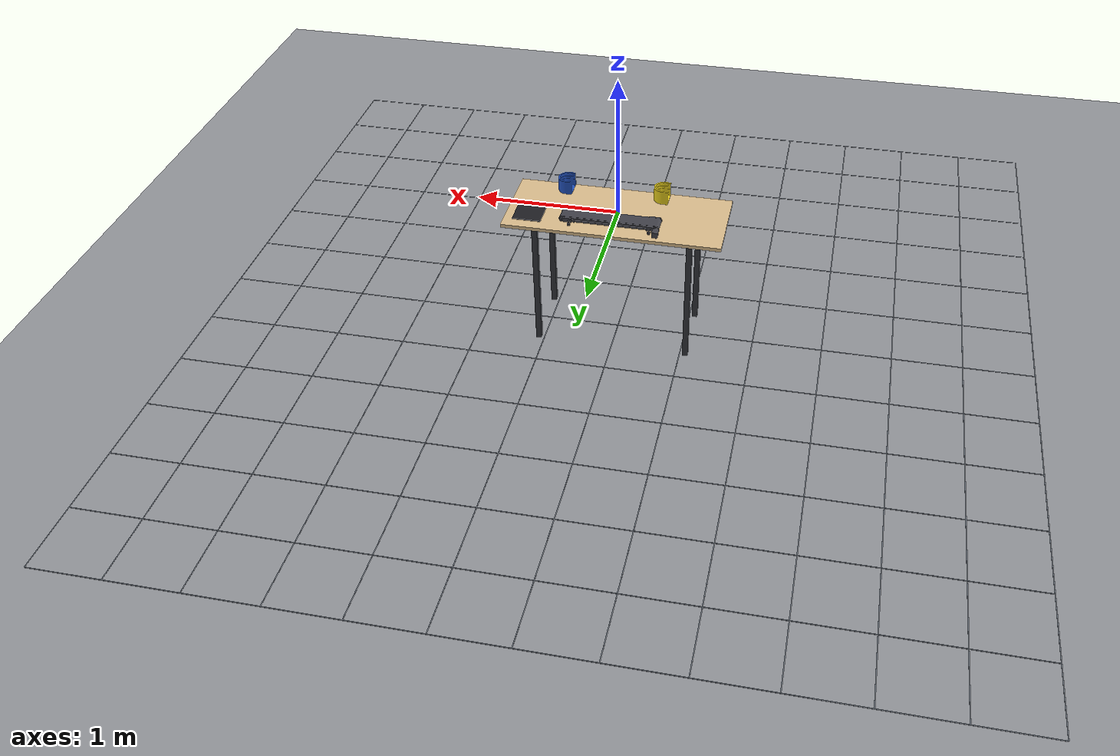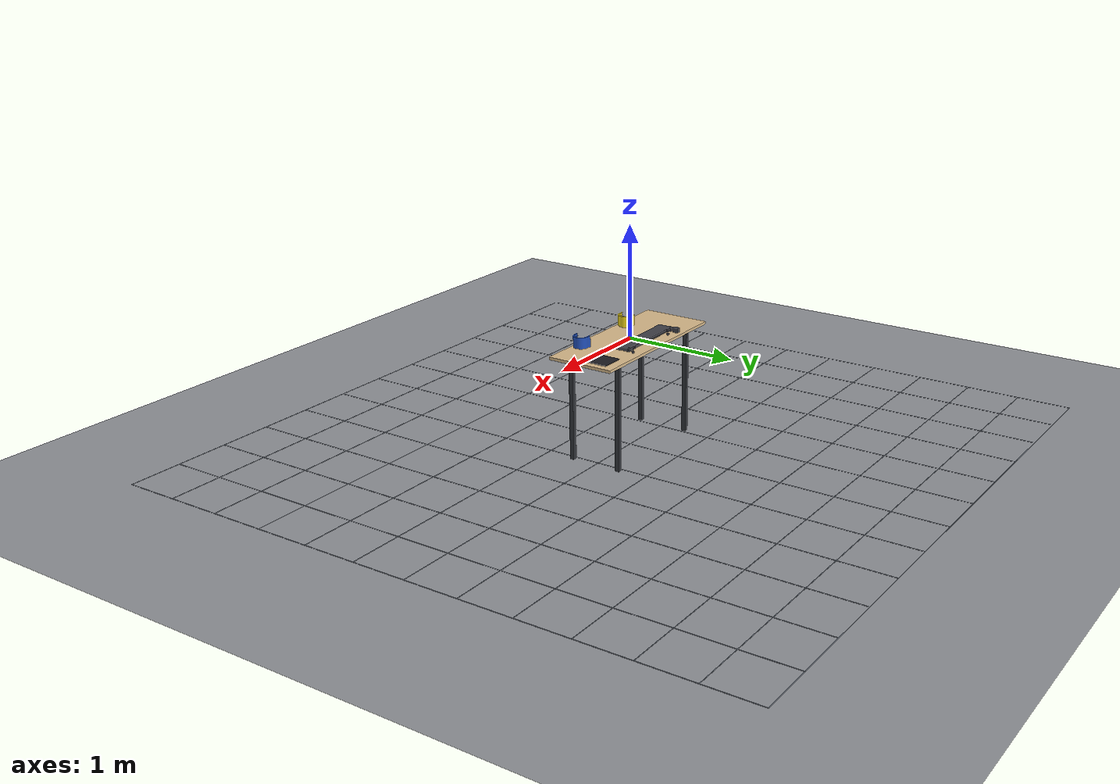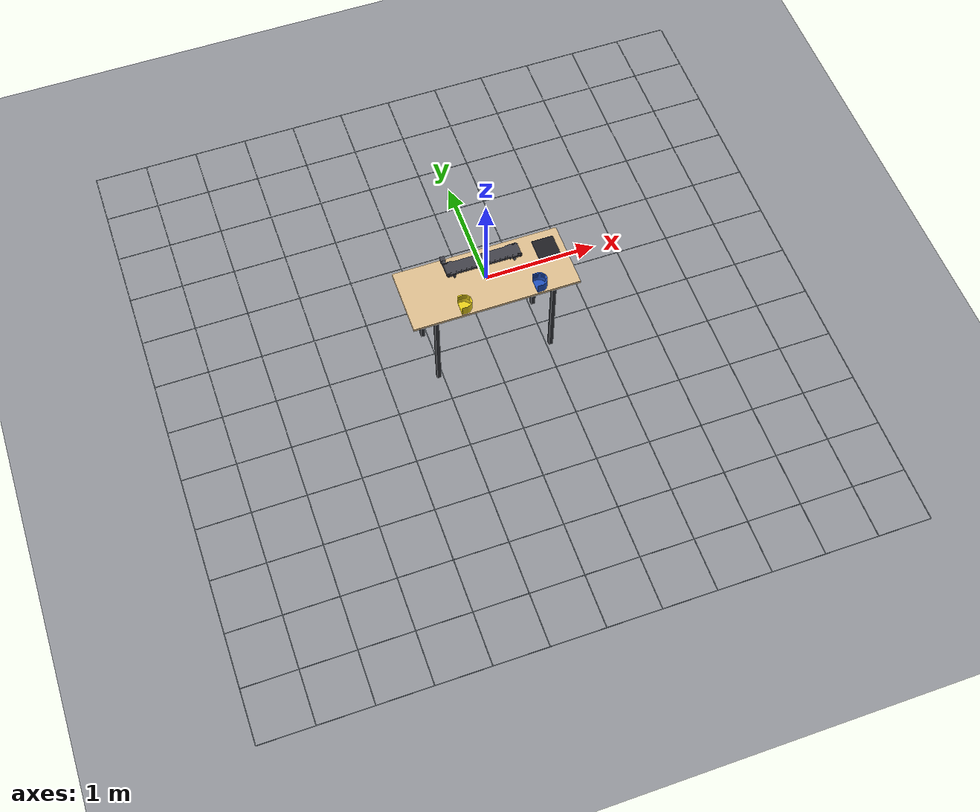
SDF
<?xml version="1.0" ?>
<!-- Copyright (c) 2026 Jatin Satyam. SPDX-License-Identifier: Apache-2.0 -->
<sdf version="1.10">
  <world name="wafer_cell">

    <physics name="1ms" type="ignored">
      <max_step_size>0.001</max_step_size>
      <real_time_factor>1.0</real_time_factor>
    </physics>

    <plugin filename="gz-sim-physics-system"           name="gz::sim::systems::Physics"/>
    <plugin filename="gz-sim-user-commands-system"     name="gz::sim::systems::UserCommands"/>
    <plugin filename="gz-sim-scene-broadcaster-system" name="gz::sim::systems::SceneBroadcaster"/>
    <plugin filename="gz-sim-contact-system"           name="gz::sim::systems::Contact"/>
    <plugin filename="gz-sim-sensors-system"           name="gz::sim::systems::Sensors">
      <render_engine>ogre2</render_engine>
    </plugin>

    <gravity>0 0 -9.8066</gravity>

    <scene>
      <ambient>0.55 0.55 0.58 1</ambient>
      <background>0.78 0.82 0.87 1</background>
      <grid>false</grid>
    </scene>

    <light type="directional" name="sun">
      <cast_shadows>true</cast_shadows>
      <pose>0 0 6 0 0 0</pose>
      <diffuse>0.95 0.94 0.90 1</diffuse>
      <specular>0.25 0.25 0.25 1</specular>
      <direction>-0.35 0.4 -0.85</direction>
    </light>
    <light type="directional" name="fill">
      <cast_shadows>false</cast_shadows>
      <pose>0 0 4 0 0 0</pose>
      <diffuse>0.35 0.36 0.40 1</diffuse>
      <direction>0.5 -0.3 -0.75</direction>
    </light>

    <model name="floor">
      <static>true</static>
      <pose>0 0 -0.99060 0 0 0</pose>
      <link name="link">
        <collision name="c"><geometry><plane><normal>0 0 1</normal><size>40 40</size></plane></geometry></collision>
        <visual name="v">
          <geometry><plane><normal>0 0 1</normal><size>40 40</size></plane></geometry>
          <material><ambient>0.46 0.47 0.49 1</ambient><diffuse>0.58 0.59 0.61 1</diffuse></material>
        </visual>
      </link>
    </model>

    <model name="floor_grid">
      <static>true</static>
      <link name="link">
      <visual name="gx1">
        <pose>-3.0 0 -0.9895999999999999 0 0 0</pose>
        <geometry><box><size>0.006 6.0 0.002</size></box></geometry>
        <material><ambient>0.30 0.32 0.35 1</ambient><diffuse>0.38 0.41 0.45 1</diffuse></material>
      </visual>
      <visual name="gy1">
        <pose>0 -3.0 -0.9895999999999999 0 0 0</pose>
        <geometry><box><size>6.0 0.006 0.002</size></box></geometry>
        <material><ambient>0.30 0.32 0.35 1</ambient><diffuse>0.38 0.41 0.45 1</diffuse></material>
      </visual>
      <visual name="gx2">
        <pose>-2.5 0 -0.9895999999999999 0 0 0</pose>
        <geometry><box><size>0.006 6.0 0.002</size></box></geometry>
        <material><ambient>0.30 0.32 0.35 1</ambient><diffuse>0.38 0.41 0.45 1</diffuse></material>
      </visual>
      <visual name="gy2">
        <pose>0 -2.5 -0.9895999999999999 0 0 0</pose>
        <geometry><box><size>6.0 0.006 0.002</size></box></geometry>
        <material><ambient>0.30 0.32 0.35 1</ambient><diffuse>0.38 0.41 0.45 1</diffuse></material>
      </visual>
      <visual name="gx3">
        <pose>-2.0 0 -0.9895999999999999 0 0 0</pose>
        <geometry><box><size>0.006 6.0 0.002</size></box></geometry>
        <material><ambient>0.30 0.32 0.35 1</ambient><diffuse>0.38 0.41 0.45 1</diffuse></material>
      </visual>
      <visual name="gy3">
        <pose>0 -2.0 -0.9895999999999999 0 0 0</pose>
        <geometry><box><size>6.0 0.006 0.002</size></box></geometry>
        <material><ambient>0.30 0.32 0.35 1</ambient><diffuse>0.38 0.41 0.45 1</diffuse></material>
      </visual>
      <visual name="gx4">
        <pose>-1.5 0 -0.9895999999999999 0 0 0</pose>
        <geometry><box><size>0.006 6.0 0.002</size></box></geometry>
        <material><ambient>0.30 0.32 0.35 1</ambient><diffuse>0.38 0.41 0.45 1</diffuse></material>
      </visual>
      <visual name="gy4">
        <pose>0 -1.5 -0.9895999999999999 0 0 0</pose>
        <geometry><box><size>6.0 0.006 0.002</size></box></geometry>
        <material><ambient>0.30 0.32 0.35 1</ambient><diffuse>0.38 0.41 0.45 1</diffuse></material>
      </visual>
      <visual name="gx5">
        <pose>-1.0 0 -0.9895999999999999 0 0 0</pose>
        <geometry><box><size>0.006 6.0 0.002</size></box></geometry>
        <material><ambient>0.30 0.32 0.35 1</ambient><diffuse>0.38 0.41 0.45 1</diffuse></material>
      </visual>
      <visual name="gy5">
        <pose>0 -1.0 -0.9895999999999999 0 0 0</pose>
        <geometry><box><size>6.0 0.006 0.002</size></box></geometry>
        <material><ambient>0.30 0.32 0.35 1</ambient><diffuse>0.38 0.41 0.45 1</diffuse></material>
      </visual>
      <visual name="gx6">
        <pose>-0.5 0 -0.9895999999999999 0 0 0</pose>
        <geometry><box><size>0.006 6.0 0.002</size></box></geometry>
        <material><ambient>0.30 0.32 0.35 1</ambient><diffuse>0.38 0.41 0.45 1</diffuse></material>
      </visual>
      <visual name="gy6">
        <pose>0 -0.5 -0.9895999999999999 0 0 0</pose>
        <geometry><box><size>6.0 0.006 0.002</size></box></geometry>
        <material><ambient>0.30 0.32 0.35 1</ambient><diffuse>0.38 0.41 0.45 1</diffuse></material>
      </visual>
      <visual name="gx7">
        <pose>0.0 0 -0.9895999999999999 0 0 0</pose>
        <geometry><box><size>0.006 6.0 0.002</size></box></geometry>
        <material><ambient>0.30 0.32 0.35 1</ambient><diffuse>0.38 0.41 0.45 1</diffuse></material>
      </visual>
      <visual name="gy7">
        <pose>0 0.0 -0.9895999999999999 0 0 0</pose>
        <geometry><box><size>6.0 0.006 0.002</size></box></geometry>
        <material><ambient>0.30 0.32 0.35 1</ambient><diffuse>0.38 0.41 0.45 1</diffuse></material>
      </visual>
      <visual name="gx8">
        <pose>0.5 0 -0.9895999999999999 0 0 0</pose>
        <geometry><box><size>0.006 6.0 0.002</size></box></geometry>
        <material><ambient>0.30 0.32 0.35 1</ambient><diffuse>0.38 0.41 0.45 1</diffuse></material>
      </visual>
      <visual name="gy8">
        <pose>0 0.5 -0.9895999999999999 0 0 0</pose>
        <geometry><box><size>6.0 0.006 0.002</size></box></geometry>
        <material><ambient>0.30 0.32 0.35 1</ambient><diffuse>0.38 0.41 0.45 1</diffuse></material>
      </visual>
      <visual name="gx9">
        <pose>1.0 0 -0.9895999999999999 0 0 0</pose>
        <geometry><box><size>0.006 6.0 0.002</size></box></geometry>
        <material><ambient>0.30 0.32 0.35 1</ambient><diffuse>0.38 0.41 0.45 1</diffuse></material>
      </visual>
      <visual name="gy9">
        <pose>0 1.0 -0.9895999999999999 0 0 0</pose>
        <geometry><box><size>6.0 0.006 0.002</size></box></geometry>
        <material><ambient>0.30 0.32 0.35 1</ambient><diffuse>0.38 0.41 0.45 1</diffuse></material>
      </visual>
      <visual name="gx10">
        <pose>1.5 0 -0.9895999999999999 0 0 0</pose>
        <geometry><box><size>0.006 6.0 0.002</size></box></geometry>
        <material><ambient>0.30 0.32 0.35 1</ambient><diffuse>0.38 0.41 0.45 1</diffuse></material>
      </visual>
      <visual name="gy10">
        <pose>0 1.5 -0.9895999999999999 0 0 0</pose>
        <geometry><box><size>6.0 0.006 0.002</size></box></geometry>
        <material><ambient>0.30 0.32 0.35 1</ambient><diffuse>0.38 0.41 0.45 1</diffuse></material>
      </visual>
      <visual name="gx11">
        <pose>2.0 0 -0.9895999999999999 0 0 0</pose>
        <geometry><box><size>0.006 6.0 0.002</size></box></geometry>
        <material><ambient>0.30 0.32 0.35 1</ambient><diffuse>0.38 0.41 0.45 1</diffuse></material>
      </visual>
      <visual name="gy11">
        <pose>0 2.0 -0.9895999999999999 0 0 0</pose>
        <geometry><box><size>6.0 0.006 0.002</size></box></geometry>
        <material><ambient>0.30 0.32 0.35 1</ambient><diffuse>0.38 0.41 0.45 1</diffuse></material>
      </visual>
      <visual name="gx12">
        <pose>2.5 0 -0.9895999999999999 0 0 0</pose>
        <geometry><box><size>0.006 6.0 0.002</size></box></geometry>
        <material><ambient>0.30 0.32 0.35 1</ambient><diffuse>0.38 0.41 0.45 1</diffuse></material>
      </visual>
      <visual name="gy12">
        <pose>0 2.5 -0.9895999999999999 0 0 0</pose>
        <geometry><box><size>6.0 0.006 0.002</size></box></geometry>
        <material><ambient>0.30 0.32 0.35 1</ambient><diffuse>0.38 0.41 0.45 1</diffuse></material>
      </visual>
      <visual name="gx13">
        <pose>3.0 0 -0.9895999999999999 0 0 0</pose>
        <geometry><box><size>0.006 6.0 0.002</size></box></geometry>
        <material><ambient>0.30 0.32 0.35 1</ambient><diffuse>0.38 0.41 0.45 1</diffuse></material>
      </visual>
      <visual name="gy13">
        <pose>0 3.0 -0.9895999999999999 0 0 0</pose>
        <geometry><box><size>6.0 0.006 0.002</size></box></geometry>
        <material><ambient>0.30 0.32 0.35 1</ambient><diffuse>0.38 0.41 0.45 1</diffuse></material>
      </visual>
      </link>
    </model>

    <!-- ============ wooden workbench — THE CELL DATUM ============ -->
    <model name="workbench">
      <static>true</static>
      <link name="link">
        <visual name="slab">
          <pose>0 0 -0.01270 0 0 0</pose>
          <geometry><box><size>1.52400 0.60960 0.02540</size></box></geometry>
          <material><ambient>0.60 0.50 0.34 1</ambient><diffuse>0.87 0.75 0.56 1</diffuse></material>
        </visual>
        <collision name="slab_c">
          <pose>0 0 -0.01270 0 0 0</pose>
          <geometry><box><size>1.52400 0.60960 0.02540</size></box></geometry>
        </collision>
      <visual name="leg_0">
        <pose>0.53975 0.23495 -0.50800 0 0 0</pose>
        <geometry><box><size>0.03810 0.03810 0.96520</size></box></geometry>
        <material><ambient>0.09 0.09 0.10 1</ambient><diffuse>0.20 0.21 0.23 1</diffuse></material>
      </visual>
      <collision name="leg_0_c">
        <pose>0.53975 0.23495 -0.50800 0 0 0</pose>
        <geometry><box><size>0.03810 0.03810 0.96520</size></box></geometry>
      </collision>
      <visual name="leg_1">
        <pose>0.53975 -0.23495 -0.50800 0 0 0</pose>
        <geometry><box><size>0.03810 0.03810 0.96520</size></box></geometry>
        <material><ambient>0.09 0.09 0.10 1</ambient><diffuse>0.20 0.21 0.23 1</diffuse></material>
      </visual>
      <collision name="leg_1_c">
        <pose>0.53975 -0.23495 -0.50800 0 0 0</pose>
        <geometry><box><size>0.03810 0.03810 0.96520</size></box></geometry>
      </collision>
      <visual name="leg_2">
        <pose>-0.53975 0.23495 -0.50800 0 0 0</pose>
        <geometry><box><size>0.03810 0.03810 0.96520</size></box></geometry>
        <material><ambient>0.09 0.09 0.10 1</ambient><diffuse>0.20 0.21 0.23 1</diffuse></material>
      </visual>
      <collision name="leg_2_c">
        <pose>-0.53975 0.23495 -0.50800 0 0 0</pose>
        <geometry><box><size>0.03810 0.03810 0.96520</size></box></geometry>
      </collision>
      <visual name="leg_3">
        <pose>-0.53975 -0.23495 -0.50800 0 0 0</pose>
        <geometry><box><size>0.03810 0.03810 0.96520</size></box></geometry>
        <material><ambient>0.09 0.09 0.10 1</ambient><diffuse>0.20 0.21 0.23 1</diffuse></material>
      </visual>
      <collision name="leg_3_c">
        <pose>-0.53975 -0.23495 -0.50800 0 0 0</pose>
        <geometry><box><size>0.03810 0.03810 0.96520</size></box></geometry>
      </collision>
      </link>
    </model>

    <model name="pro600_plate">
      <static>true</static>
      <pose>0.600 0.124 0.004 0 0 0</pose>
      <link name="link">
        <visual name="v">
          <geometry><box><size>0.200 0.200 0.008</size></box></geometry>
          <material><ambient>0.05 0.05 0.06 1</ambient><diffuse>0.12 0.12 0.14 1</diffuse>
                    <specular>0.3 0.3 0.3 1</specular></material>
        </visual>
        <collision name="c"><geometry><box><size>0.200 0.200 0.008</size></box></geometry></collision>
      </link>
    </model>

    <model name="conveyor_frame">
      <static>true</static>
      <pose>0.30407 0.210 0.02665 1.5708 0 3.14159</pose>
      <link name="link">
        <visual name="v">
          <geometry>
            <mesh><uri>package://wafer_cell_bringup/meshes/dobot_conveyor.stl</uri>
                  <scale>1 1 1</scale></mesh>
          </geometry>
          <material><ambient>0.13 0.13 0.15 1</ambient><diffuse>0.26 0.26 0.29 1</diffuse></material>
        </visual>
      </link>
    </model>
    <model name="conveyor_collision">
      <static>true</static>
      <pose>0.02 0.191 0.03132 0 0 0</pose>
      <link name="link">
        <collision name="c">
          <geometry><box><size>0.698 0.150 0.06265</size></box></geometry>
        </collision>
      </link>
    </model>

    <model name="tower_yellow">
      <static>true</static>
      <pose>-0.281 -0.230 0.005 1.5708 0 3.14159</pose>
      <link name="link">
        <visual name="v">
          <geometry><mesh><uri>package://wafer_cell_bringup/meshes/wafer_tower.stl</uri>
                          <scale>0.001 0.001 0.001</scale></mesh></geometry>
          <material><ambient>0.55 0.48 0.05 1</ambient><diffuse>0.92 0.82 0.10 1</diffuse></material>
        </visual>
        <collision name="c">
          <geometry><mesh><uri>package://wafer_cell_bringup/meshes/wafer_tower_collision.stl</uri>
                          <scale>0.001 0.001 0.001</scale></mesh></geometry>
        </collision>
      </link>
    </model>

    <model name="tower_blue">
      <static>true</static>
      <pose>0.407 -0.230 0.005 1.5708 0 3.14159</pose>
      <link name="link">
        <visual name="v">
          <geometry><mesh><uri>package://wafer_cell_bringup/meshes/wafer_tower.stl</uri>
                          <scale>0.001 0.001 0.001</scale></mesh></geometry>
          <material><ambient>0.06 0.16 0.42 1</ambient><diffuse>0.13 0.32 0.75 1</diffuse></material>
        </visual>
        <collision name="c">
          <geometry><mesh><uri>package://wafer_cell_bringup/meshes/wafer_tower_collision.stl</uri>
                          <scale>0.001 0.001 0.001</scale></mesh></geometry>
        </collision>
      </link>
    </model>

    <model name="inspection_cam">
      <static>true</static>
      <pose>-0.150 -1.750 0.620 0 0.28800 1.48538</pose>
      <link name="link">
        <sensor name="cell_cam" type="camera">
          <camera>
            <horizontal_fov>1.05</horizontal_fov>
            <image><width>1280</width><height>800</height><format>R8G8B8</format></image>
            <clip><near>0.05</near><far>50</far></clip>
          </camera>
          <always_on>1</always_on>
          <update_rate>15</update_rate>
          <topic>cell_cam</topic>
        </sensor>
      </link>
    </model>

    <model name="detail_blue_cam">
      <static>true</static>
      <pose>0.277 -0.527 0.280 0 0.553 1.157</pose>
      <link name="link">
        <sensor name="detail_blue_cam" type="camera">
          <camera><horizontal_fov>0.55</horizontal_fov>
            <image><width>1024</width><height>768</height><format>R8G8B8</format></image>
            <clip><near>0.05</near><far>10</far></clip></camera>
          <always_on>1</always_on><update_rate>15</update_rate><topic>detail_blue_cam</topic>
        </sensor>
      </link>
    </model>
    <model name="detail_belt_cam">
      <static>true</static>
      <pose>-0.230 0.386 0.215 0 0.470 -1.5708</pose>
      <link name="link">
        <sensor name="detail_belt_cam" type="camera">
          <camera><horizontal_fov>0.55</horizontal_fov>
            <image><width>1024</width><height>768</height><format>R8G8B8</format></image>
            <clip><near>0.05</near><far>10</far></clip></camera>
          <always_on>1</always_on><update_rate>15</update_rate><topic>detail_belt_cam</topic>
        </sensor>
      </link>
    </model>

    <model name="detail_beltc_cam">
      <static>true</static>
      <pose>-0.027 -0.124 0.250 0 0.600 1.060</pose>
      <link name="link">
        <sensor name="detail_beltc_cam" type="camera">
          <camera><horizontal_fov>0.55</horizontal_fov>
            <image><width>1024</width><height>768</height><format>R8G8B8</format></image>
            <clip><near>0.05</near><far>10</far></clip></camera>
          <always_on>1</always_on><update_rate>15</update_rate><topic>detail_beltc_cam</topic>
        </sensor>
      </link>
    </model>

    <model name="detail_yellow_cam">
      <static>true</static>
      <pose>-0.478 -0.518 0.250 0 0.430 0.971</pose>
      <link name="link">
        <sensor name="detail_yellow_cam" type="camera">
          <camera><horizontal_fov>0.55</horizontal_fov>
            <image><width>1024</width><height>768</height><format>R8G8B8</format></image>
            <clip><near>0.05</near><far>10</far></clip></camera>
          <always_on>1</always_on><update_rate>15</update_rate><topic>detail_yellow_cam</topic>
        </sensor>
      </link>
    </model>

    <model name="plan_cam">
      <static>true</static>
      <pose>0 -0.30 1.90 0 1.44 1.5708</pose>
      <link name="link">
        <sensor name="plan_cam" type="camera">
          <camera>
            <horizontal_fov>0.95</horizontal_fov>
            <image><width>1280</width><height>800</height><format>R8G8B8</format></image>
            <clip><near>0.05</near><far>50</far></clip>
          </camera>
          <always_on>1</always_on><update_rate>15</update_rate>
          <topic>plan_cam</topic>
        </sensor>
      </link>
    </model>

  </world>
</sdf>
